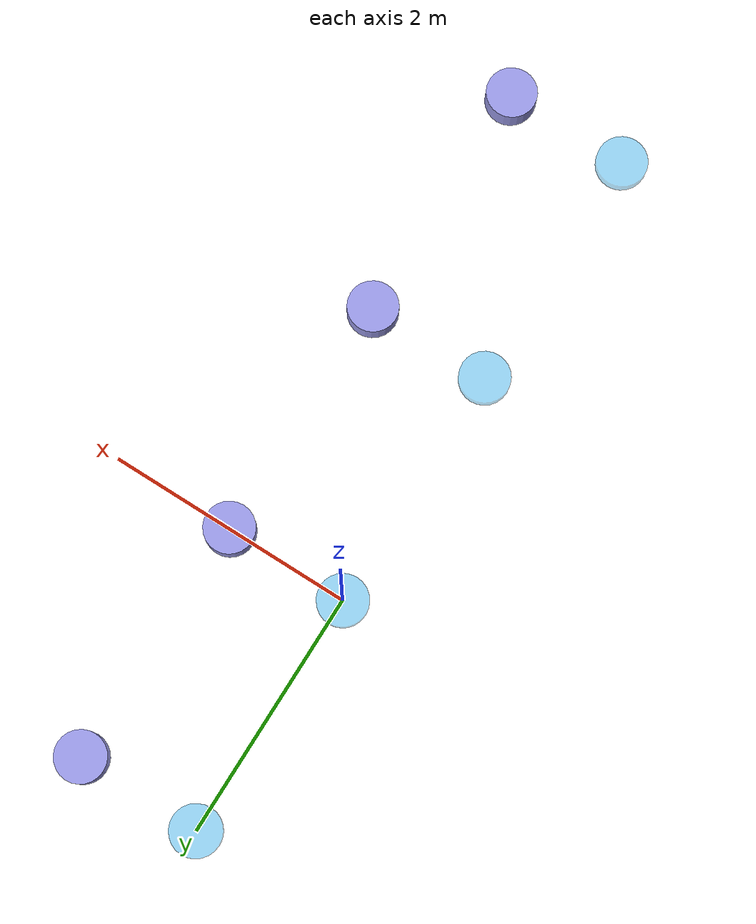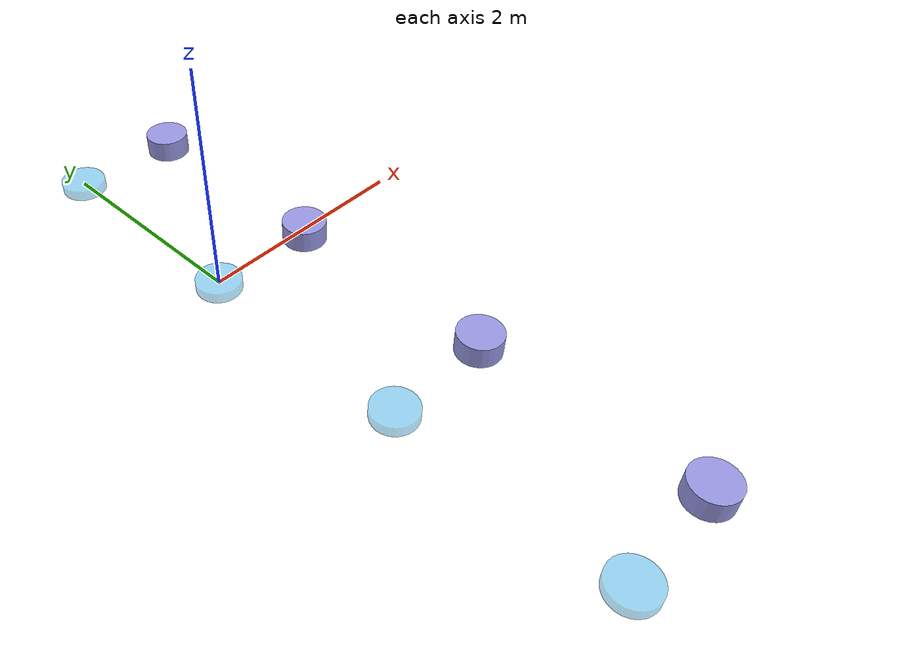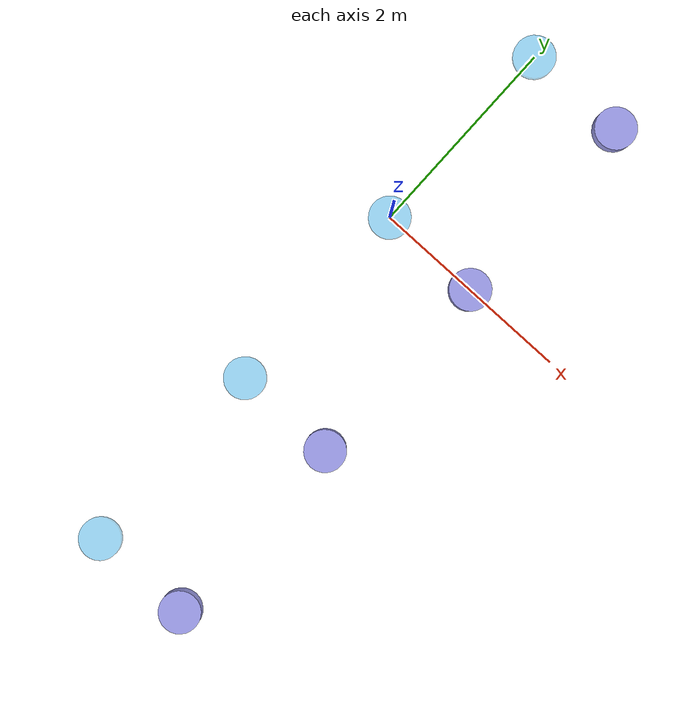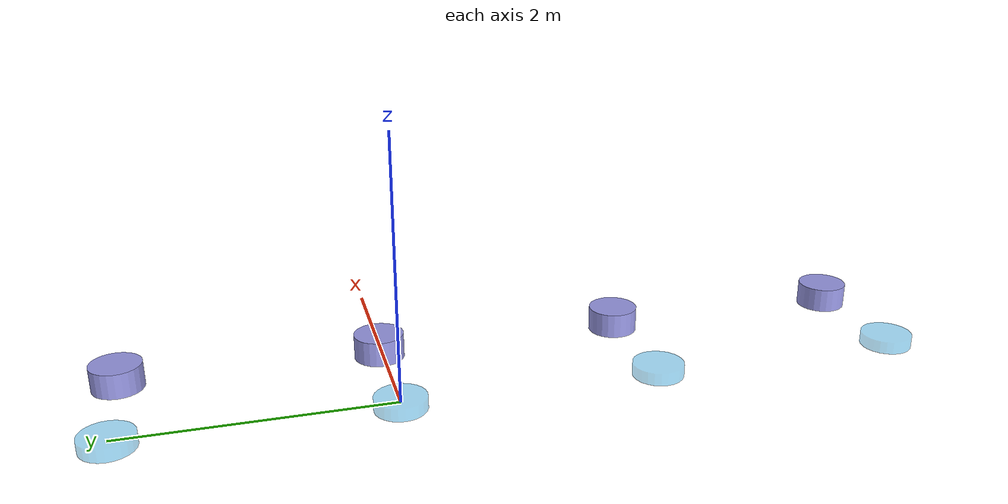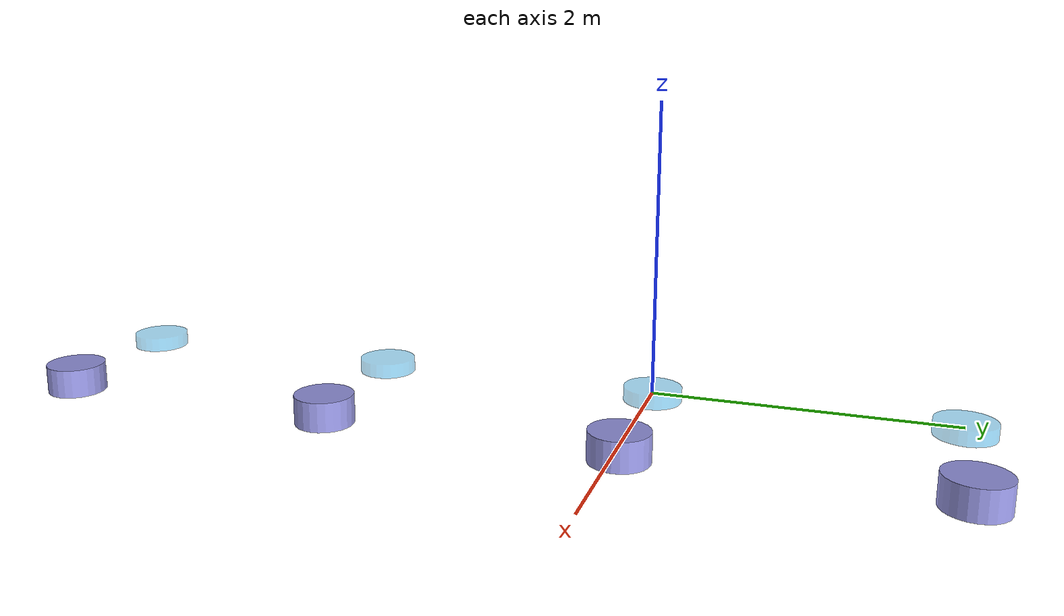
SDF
<?xml version="1.0" encoding="UTF-8"?>
<sdf version="1.7">
  <world name="default">
    <physics name="fast" type="ignored">
      <real_time_factor>0</real_time_factor>
    </physics>

    <plugin
      filename="gz-sim-physics-system"
      name="gz::sim::systems::Physics">
    </plugin>
    <plugin
      filename="gz-sim-scene-broadcaster-system"
      name="gz::sim::systems::SceneBroadcaster">
    </plugin>
    <light type="directional" name="sun">
      <pose>0 0 10 0 0 0</pose>
      <direction>-0.5 0.1 -0.9</direction>
    </light>

    <model name="ground_plane">
      <static>true</static>
      <link name="surface">
        <collision name="surface">
          <geometry>
            <plane>
              <normal>0 0 1</normal>
              <size>2 2</size>
            </plane>
          </geometry>
        </collision>
      </link>
    </model>

    <model name="cylinder1">
      <link name="base_link">
        <visual name="visual1">
          <geometry>
            <cylinder>
              <radius>0.2</radius>
              <length>0.1</length>
            </cylinder>
          </geometry>
          <material>
            <ambient>0.0 0.6 0.9 0.4</ambient>
            <diffuse>0.0 0.6 0.9 0.4</diffuse>
          </material>
        </visual>
      </link>
      <!--
        link0_outer is already resting on the ground plane, so it shouldn't
        move at all
      -->
      <link name="link0_outer">
        <pose>1 0 0 0 0 0</pose>
        <collision name="collision_disk">
          <geometry>
            <cylinder>
              <radius>0.2</radius>
              <length>0.2</length>
            </cylinder>
          </geometry>
        </collision>
        <visual name="visual1">
          <geometry>
            <cylinder>
              <radius>0.2</radius>
              <length>0.2</length>
            </cylinder>
          </geometry>
          <material>
            <ambient>0.6 0.6 0.9 1</ambient>
            <diffuse>0.6 0.6 0.9 1</diffuse>
            <specular>1.0 1.0 1.0 1</specular>
          </material>
        </visual>
      </link>
    </model>

    <model name="cylinder1_custom" canonical_link="base_link_custom">
      <pose>0 2 0 0 0 0</pose>
      <link name="link0_outer_custom">
        <pose>1 0 0 0 0 0</pose>
        <collision name="collision_disk">
          <geometry>
            <cylinder>
              <radius>0.2</radius>
              <length>0.2</length>
            </cylinder>
          </geometry>
        </collision>
        <visual name="visual1">
          <geometry>
            <cylinder>
              <radius>0.2</radius>
              <length>0.2</length>
            </cylinder>
          </geometry>
          <material>
            <ambient>0.6 0.6 0.9 1</ambient>
            <diffuse>0.6 0.6 0.9 1</diffuse>
            <specular>1.0 1.0 1.0 1</specular>
          </material>
        </visual>
      </link>

      <link name="base_link_custom">
        <visual name="visual1">
          <geometry>
            <cylinder>
              <radius>0.2</radius>
              <length>0.1</length>
            </cylinder>
          </geometry>
          <material>
            <ambient>0.0 0.6 0.9 0.4</ambient>
            <diffuse>0.0 0.6 0.9 0.4</diffuse>
          </material>
        </visual>
      </link>
    </model>

    <model name="cylinder1_parent_individual">
      <pose>0 -2 0 0 0 0</pose>
      <link name="base_link_parent">
        <visual name="visual1">
          <geometry>
            <cylinder>
              <radius>0.2</radius>
              <length>0.1</length>
            </cylinder>
          </geometry>
          <material>
            <ambient>0.0 0.6 0.9 0.4</ambient>
            <diffuse>0.0 0.6 0.9 0.4</diffuse>
          </material>
        </visual>
      </link>
      <model name="cylinder1_child_individual">
        <!--
          This link is already resting on the ground plane, so it shouldn't
          move at all since it has a collision attached to it
        -->
        <link name="nested_model_link">
          <pose>1 0 0 0 0 0</pose>
          <collision name="collision_disk">
            <geometry>
              <cylinder>
                <radius>0.2</radius>
                <length>0.2</length>
              </cylinder>
            </geometry>
          </collision>
          <visual name="visual1">
            <geometry>
              <cylinder>
                <radius>0.2</radius>
                <length>0.2</length>
              </cylinder>
            </geometry>
            <material>
              <ambient>0.6 0.6 0.9 1</ambient>
              <diffuse>0.6 0.6 0.9 1</diffuse>
              <specular>1.0 1.0 1.0 1</specular>
            </material>
          </visual>
        </link>
      </model>
    </model>

    <!--
         Similar to cylinder1, but using a nested model where the parent and
         child share the same canonical link (base_link_child).
    -->
    <model name="cylinder1_parent_shared" canonical_link="cylinder1_child_shared::base_link_child">
      <pose>0 -4 0 0 0 0</pose>
      <!--
        This link is already resting on the ground plane, so it shouldn't
        move at all since it has a collision attached to it
      -->
      <link name="parent_model_link">
        <pose>1 0 0 0 0 0</pose>
        <collision name="collision_disk">
          <geometry>
            <cylinder>
              <radius>0.2</radius>
              <length>0.2</length>
            </cylinder>
          </geometry>
        </collision>
        <visual name="visual1">
          <geometry>
            <cylinder>
              <radius>0.2</radius>
              <length>0.2</length>
            </cylinder>
          </geometry>
          <material>
            <ambient>0.6 0.6 0.9 1</ambient>
            <diffuse>0.6 0.6 0.9 1</diffuse>
            <specular>1.0 1.0 1.0 1</specular>
          </material>
        </visual>
      </link>
      <model name="cylinder1_child_shared">
        <link name="base_link_child">
          <visual name="visual1">
            <geometry>
              <cylinder>
                <radius>0.2</radius>
                <length>0.1</length>
              </cylinder>
            </geometry>
            <material>
              <ambient>0.0 0.6 0.9 0.4</ambient>
              <diffuse>0.0 0.6 0.9 0.4</diffuse>
            </material>
          </visual>
        </link>
      </model>
    </model>
  </world>
</sdf>
